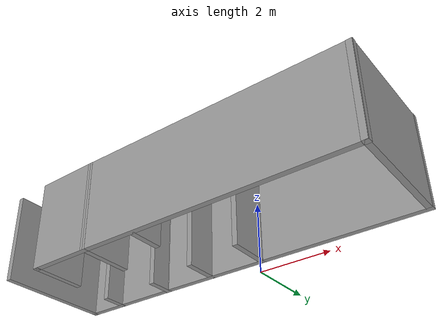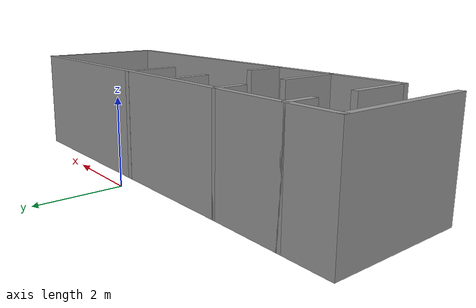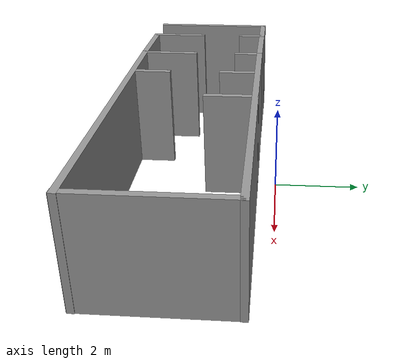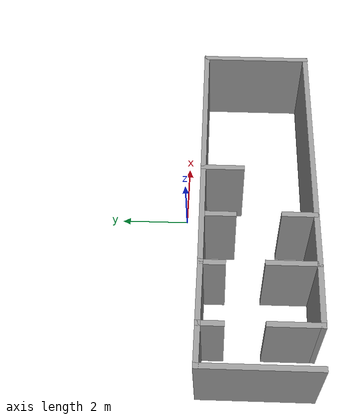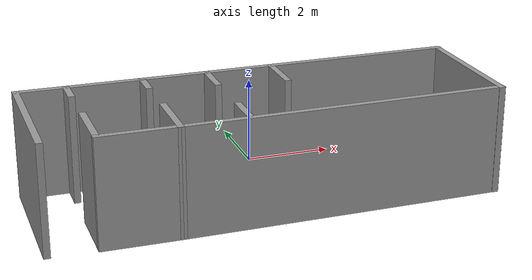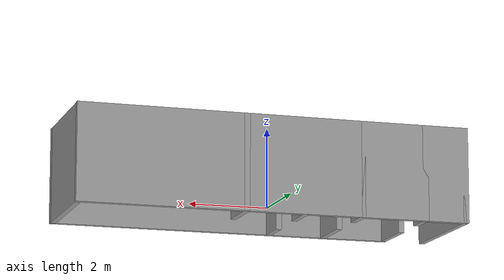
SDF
<?xml version='1.0'?>
<sdf version='1.7'>
  <model name='stero_dom'>
    <pose>-0.419538 -1.87806 0 0 -0 0</pose>
    <link name='Wall_0'>
      <collision name='Wall_0_Collision'>
        <geometry>
          <box>
            <size>3.25 0.15 2.5</size>
          </box>
        </geometry>
        <pose>0 0 1.25 0 -0 0</pose>
      </collision>
      <visual name='Wall_0_Visual'>
        <pose>0 0 1.25 0 -0 0</pose>
        <geometry>
          <box>
            <size>3.25 0.15 2.5</size>
          </box>
        </geometry>
        <material>
          <script>
            <uri>file://media/materials/scripts/gazebo.material</uri>
            <name>Gazebo/Grey</name>
          </script>
          <ambient>1 1 1 1</ambient>
        </material>
        <meta>
          <layer>0</layer>
        </meta>
      </visual>
      <pose>-5.08046 -0.211942 0 0 -0 1.5708</pose>
    </link>
    <link name='Wall_1'>
      <collision name='Wall_1_Collision'>
        <geometry>
          <box>
            <size>1.25 0.15 2.5</size>
          </box>
        </geometry>
        <pose>0 0 1.25 0 -0 0</pose>
      </collision>
      <visual name='Wall_1_Visual'>
        <pose>0 0 1.25 0 -0 0</pose>
        <geometry>
          <box>
            <size>1.25 0.15 2.5</size>
          </box>
        </geometry>
        <material>
          <script>
            <uri>file://media/materials/scripts/gazebo.material</uri>
            <name>Gazebo/Grey</name>
          </script>
          <ambient>1 1 1 1</ambient>
        </material>
        <meta>
          <layer>0</layer>
        </meta>
      </visual>
      <pose>-4.53046 1.33806 0 0 -0 0</pose>
    </link>
    <link name='Wall_10'>
      <collision name='Wall_10_Collision'>
        <geometry>
          <box>
            <size>1.5 0.15 2.5</size>
          </box>
        </geometry>
        <pose>0 0 1.25 0 -0 0</pose>
      </collision>
      <visual name='Wall_10_Visual'>
        <pose>0 0 1.25 0 -0 0</pose>
        <geometry>
          <box>
            <size>1.5 0.15 2.5</size>
          </box>
        </geometry>
        <material>
          <script>
            <uri>file://media/materials/scripts/gazebo.material</uri>
            <name>Gazebo/Grey</name>
          </script>
          <ambient>1 1 1 1</ambient>
        </material>
        <meta>
          <layer>0</layer>
        </meta>
      </visual>
      <pose>-2.24046 -1.11694 0 0 -0 1.5708</pose>
    </link>
    <link name='Wall_12'>
      <collision name='Wall_12_Collision'>
        <geometry>
          <box>
            <size>7.48033 0.15 2.5</size>
          </box>
        </geometry>
        <pose>0 0 1.25 0 -0 0</pose>
      </collision>
      <visual name='Wall_12_Visual'>
        <pose>0 0 1.25 0 -0 0</pose>
        <geometry>
          <box>
            <size>7.48033 0.15 2.5</size>
          </box>
        </geometry>
        <material>
          <script>
            <uri>file://media/materials/scripts/gazebo.material</uri>
            <name>Gazebo/Grey</name>
          </script>
          <ambient>1 1 1 1</ambient>
        </material>
        <meta>
          <layer>0</layer>
        </meta>
      </visual>
      <pose>1.41454 1.37306 0 0 -0 0.00955</pose>
    </link>
    <link name='Wall_13'>
      <collision name='Wall_13_Collision'>
        <geometry>
          <box>
            <size>3.25 0.15 2.5</size>
          </box>
        </geometry>
        <pose>0 0 1.25 0 -0 0</pose>
      </collision>
      <visual name='Wall_13_Visual'>
        <pose>0 0 1.25 0 -0 0</pose>
        <geometry>
          <box>
            <size>3.25 0.15 2.5</size>
          </box>
        </geometry>
        <material>
          <script>
            <uri>file://media/materials/scripts/gazebo.material</uri>
            <name>Gazebo/Grey</name>
          </script>
          <ambient>1 1 1 1</ambient>
        </material>
        <meta>
          <layer>0</layer>
        </meta>
      </visual>
      <pose>5.06954 -0.151942 0 0 -0 -1.5708</pose>
    </link>
    <link name='Wall_14'>
      <collision name='Wall_14_Collision'>
        <geometry>
          <box>
            <size>7.47044 0.15 2.5</size>
          </box>
        </geometry>
        <pose>0 0 1.25 0 -0 0</pose>
      </collision>
      <visual name='Wall_14_Visual'>
        <pose>0 0 1.25 0 -0 0</pose>
        <geometry>
          <box>
            <size>7.47044 0.15 2.5</size>
          </box>
        </geometry>
        <material>
          <script>
            <uri>file://media/materials/scripts/gazebo.material</uri>
            <name>Gazebo/Grey</name>
          </script>
          <ambient>1 1 1 1</ambient>
        </material>
        <meta>
          <layer>0</layer>
        </meta>
      </visual>
      <pose>1.41954 -1.74694 0 0 -0 -3.12657</pose>
    </link>
    <link name='Wall_17'>
      <collision name='Wall_17_Collision'>
        <geometry>
          <box>
            <size>1 0.15 2.5</size>
          </box>
        </geometry>
        <pose>0 0 1.25 0 -0 0</pose>
      </collision>
      <visual name='Wall_17_Visual'>
        <pose>0 0 1.25 0 -0 0</pose>
        <geometry>
          <box>
            <size>1 0.15 2.5</size>
          </box>
        </geometry>
        <material>
          <script>
            <uri>file://media/materials/scripts/gazebo.material</uri>
            <name>Gazebo/Grey</name>
          </script>
          <ambient>1 1 1 1</ambient>
        </material>
        <meta>
          <layer>0</layer>
        </meta>
      </visual>
      <pose>-0.730462 -1.32694 0 0 -0 1.5708</pose>
    </link>
    <link name='Wall_19'>
      <collision name='Wall_19_Collision'>
        <geometry>
          <box>
            <size>1 0.15 2.5</size>
          </box>
        </geometry>
        <pose>0 0 1.25 0 -0 0</pose>
      </collision>
      <visual name='Wall_19_Visual'>
        <pose>0 0 1.25 0 -0 0</pose>
        <geometry>
          <box>
            <size>1 0.15 2.5</size>
          </box>
        </geometry>
        <material>
          <script>
            <uri>file://media/materials/scripts/gazebo.material</uri>
            <name>Gazebo/Grey</name>
          </script>
          <ambient>1 1 1 1</ambient>
        </material>
        <meta>
          <layer>0</layer>
        </meta>
      </visual>
      <pose>-0.770463 0.903058 0 0 -0 -1.5708</pose>
    </link>
    <link name='Wall_2'>
      <collision name='Wall_2_Collision'>
        <geometry>
          <box>
            <size>0.75 0.15 2.5</size>
          </box>
        </geometry>
        <pose>0 0 1.25 0 -0 0</pose>
      </collision>
      <visual name='Wall_2_Visual'>
        <pose>0 0 1.25 0 -0 0</pose>
        <geometry>
          <box>
            <size>0.75 0.15 2.5</size>
          </box>
        </geometry>
        <material>
          <script>
            <uri>file://media/materials/scripts/gazebo.material</uri>
            <name>Gazebo/Grey</name>
          </script>
          <ambient>1 1 1 1</ambient>
        </material>
        <meta>
          <layer>0</layer>
        </meta>
      </visual>
      <pose>-3.98046 1.03806 0 0 -0 -1.5708</pose>
    </link>
    <link name='Wall_21'>
      <collision name='Wall_21_Collision'>
        <geometry>
          <box>
            <size>1.25 0.15 2.5</size>
          </box>
        </geometry>
        <pose>0 0 1.25 0 -0 0</pose>
      </collision>
      <visual name='Wall_21_Visual'>
        <pose>0 0 1.25 0 -0 0</pose>
        <geometry>
          <box>
            <size>1.25 0.15 2.5</size>
          </box>
        </geometry>
        <material>
          <script>
            <uri>file://media/materials/scripts/gazebo.material</uri>
            <name>Gazebo/Grey</name>
          </script>
          <ambient>1 1 1 1</ambient>
        </material>
        <meta>
          <layer>0</layer>
        </meta>
      </visual>
      <pose>0.789538 0.818058 0 0 -0 -1.5708</pose>
    </link>
    <link name='Wall_4'>
      <collision name='Wall_4_Collision'>
        <geometry>
          <box>
            <size>1.5 0.15 2.5</size>
          </box>
        </geometry>
        <pose>0 0 1.25 0 -0 0</pose>
      </collision>
      <visual name='Wall_4_Visual'>
        <pose>0 0 1.25 0 -0 0</pose>
        <geometry>
          <box>
            <size>1.5 0.15 2.5</size>
          </box>
        </geometry>
        <material>
          <script>
            <uri>file://media/materials/scripts/gazebo.material</uri>
            <name>Gazebo/Grey</name>
          </script>
          <ambient>1 1 1 1</ambient>
        </material>
        <meta>
          <layer>0</layer>
        </meta>
      </visual>
      <pose>-3.96046 -1.11694 0 0 -0 1.5708</pose>
    </link>
    <link name='Wall_6'>
      <collision name='Wall_6_Collision'>
        <geometry>
          <box>
            <size>1.88 0.15 2.5</size>
          </box>
        </geometry>
        <pose>0 0 1.25 0 -0 0</pose>
      </collision>
      <visual name='Wall_6_Visual'>
        <pose>0 0 1.25 0 -0 0</pose>
        <geometry>
          <box>
            <size>1.88 0.15 2.5</size>
          </box>
        </geometry>
        <material>
          <script>
            <uri>file://media/materials/scripts/gazebo.material</uri>
            <name>Gazebo/Grey</name>
          </script>
          <ambient>1 1 1 1</ambient>
        </material>
        <meta>
          <layer>0</layer>
        </meta>
      </visual>
      <pose>-3.11546 1.33806 0 0 -0 0</pose>
    </link>
    <link name='Wall_7'>
      <collision name='Wall_7_Collision'>
        <geometry>
          <box>
            <size>0.75 0.15 2.5</size>
          </box>
        </geometry>
        <pose>0 0 1.25 0 -0 0</pose>
      </collision>
      <visual name='Wall_7_Visual'>
        <pose>0 0 1.25 0 -0 0</pose>
        <geometry>
          <box>
            <size>0.75 0.15 2.5</size>
          </box>
        </geometry>
        <material>
          <script>
            <uri>file://media/materials/scripts/gazebo.material</uri>
            <name>Gazebo/Grey</name>
          </script>
          <ambient>1 1 1 1</ambient>
        </material>
        <meta>
          <layer>0</layer>
        </meta>
      </visual>
      <pose>-2.27046 1.03806 0 0 -0 -1.5708</pose>
    </link>
    <link name='Wall_9'>
      <collision name='Wall_9_Collision'>
        <geometry>
          <box>
            <size>1.87026 0.15 2.5</size>
          </box>
        </geometry>
        <pose>0 0 1.25 0 -0 0</pose>
      </collision>
      <visual name='Wall_9_Visual'>
        <pose>0 0 1.25 0 -0 0</pose>
        <geometry>
          <box>
            <size>1.87026 0.15 2.5</size>
          </box>
        </geometry>
        <material>
          <script>
            <uri>file://media/materials/scripts/gazebo.material</uri>
            <name>Gazebo/Grey</name>
          </script>
          <ambient>1 1 1 1</ambient>
        </material>
        <meta>
          <layer>0</layer>
        </meta>
      </visual>
      <pose>-3.10046 -1.80194 0 0 -0 0</pose>
    </link>
    <static>1</static>
  </model>
</sdf>
